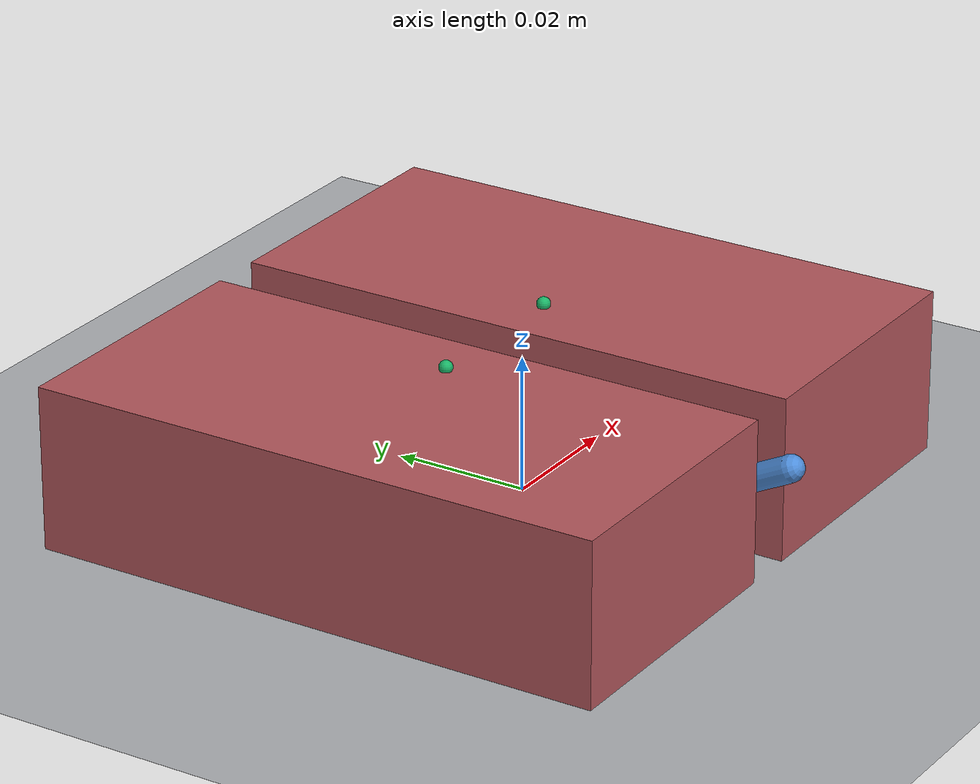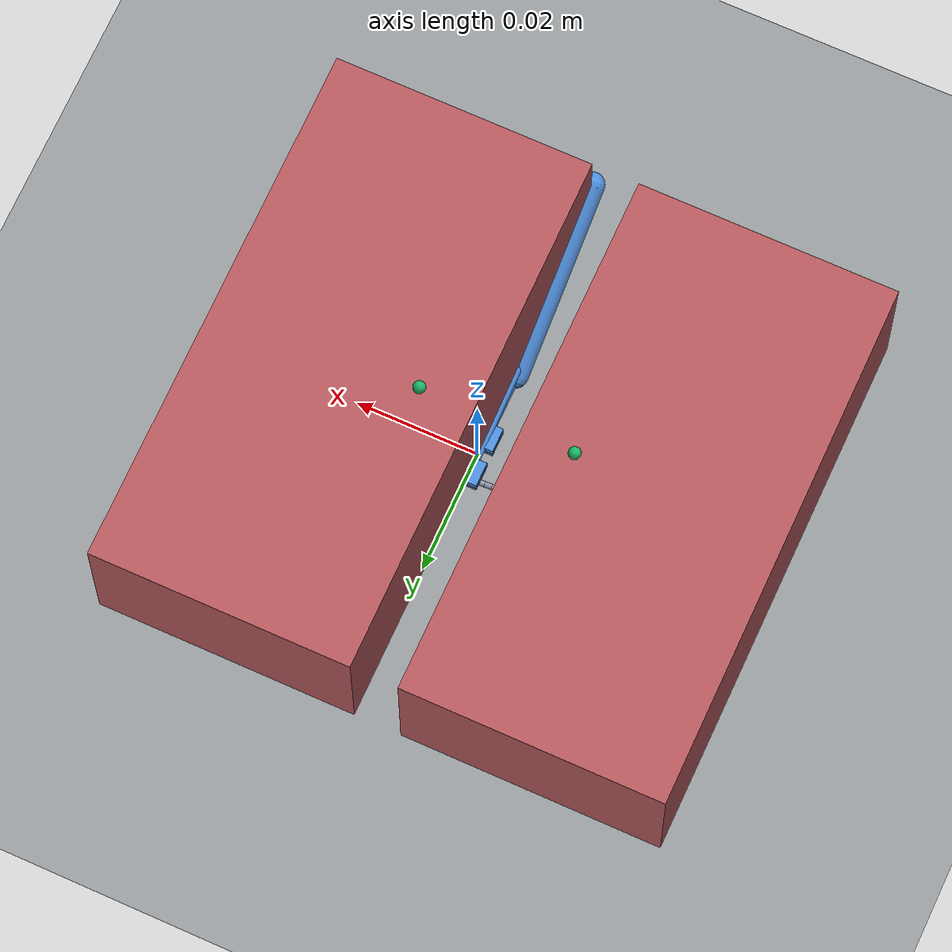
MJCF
<mujoco model="opposing_jaw_stitch"><compiler angle="radian"/><option timestep=".002" integrator="implicitfast"/>
      <default><geom solref=".006 1"/></default><visual><global offwidth="960" offheight="720"/></visual>
      <worldbody><light pos="0 -.15 .3"/><light pos=".1 .1 .3" diffuse=".7 .7 .7"/>
      <camera name="overview" pos=".075 -.12 .14" xyaxes=".85 .53 0 -.37 .60 .71"/>
      <geom name="floor" type="plane" size=".3 .3 .01" rgba=".10 .14 .18 1" contype="1" conaffinity="3"/>
      <body name="left_edge" pos="-0.028772380899656818 0.0018493616940963974 0.012">
          <joint name="left_edge" type="slide" axis="1 0 0" stiffness="71.03026584856343" damping="2" limited="true" range="0 0.003635050733449477"/>
          <geom name="pad_left" type="box" size=".021 .043 0.012" mass=".05" rgba=".70 .34 .36 1" contype="1" conaffinity="1"/>
          <site name="left_stitch" pos="0.012320772821860157 0 0.0125" size=".001" rgba=".1 .7 .4 1"/>
          </body><body name="right_edge" pos="0.020797720567242137 0.0018493616940963974 0.012">
          <joint name="right_edge" type="slide" axis="-1 0 0" stiffness="71.03026584856343" damping="2" limited="true" range="0 0.003635050733449477"/>
          <geom name="pad_right" type="box" size=".021 .043 0.012" mass=".05" rgba=".70 .34 .36 1" contype="1" conaffinity="1"/>
          <site name="right_stitch" pos="-0.012320772821860157 0 0.0125" size=".001" rgba=".1 .7 .4 1"/>
          </body><body name="donor" mocap="true"><geom type="capsule" fromto="0 -.042 .014 0 -.014 0" size=".002" rgba=".30 .55 .85 1" contype="0" conaffinity="0"/>
         <geom type="capsule" fromto="0 -.014 0 0 -.003 0" size=".0008" rgba=".30 .55 .85 1" contype="0" conaffinity="0"/>
         <geom type="capsule" fromto="0 -.014 .002 0 .003 0" size=".0008" rgba=".30 .55 .85 1" contype="0" conaffinity="0"/>
         <geom name="donor_finger_a" type="box" pos="0 -.003 0" size=".002 .002 .001" rgba=".30 .55 .85 1" contype="0" conaffinity="0"/>
         <geom name="donor_finger_b" type="box" pos="0 .003 0" size=".002 .002 .001" rgba=".30 .55 .85 1" contype="0" conaffinity="0"/></body><body name="receiver" mocap="true"><geom type="capsule" fromto="0 -.042 .014 0 -.014 0" size=".002" rgba=".80 .65 .25 1" contype="0" conaffinity="0"/>
         <geom type="capsule" fromto="0 -.014 0 0 -.003 0" size=".0008" rgba=".80 .65 .25 1" contype="0" conaffinity="0"/>
         <geom type="capsule" fromto="0 -.014 .002 0 .003 0" size=".0008" rgba=".80 .65 .25 1" contype="0" conaffinity="0"/>
         <geom name="receiver_finger_a" type="box" pos="0 -.003 0" size=".002 .002 .001" rgba=".80 .65 .25 1" contype="0" conaffinity="0"/>
         <geom name="receiver_finger_b" type="box" pos="0 .003 0" size=".002 .002 .001" rgba=".80 .65 .25 1" contype="0" conaffinity="0"/></body>
      <body name="driver" gravcomp="1"><inertial pos="0 0 0" mass=".15" diaginertia=".0001 .0001 .0001"/>
      <joint name="x" type="slide" axis="1 0 0" damping=".05"/><joint name="y" type="slide" axis="0 1 0" damping=".05"/><joint name="z" type="slide" axis="0 0 1" damping=".05"/>
      <joint name="theta" type="hinge" axis="0 -1 0" damping=".025"/><geom name="needle_0" type="capsule" fromto="-0.01246427791158932 0 -1.5264338048110918e-18 -0.012404259006611318 0 -0.0012217128771668958" size=".00045" rgba=".8 .83 .9 1" contype="2" conaffinity="0"/><geom name="needle_1" type="capsule" fromto="-0.012404259006611318 0 -0.0012217128771668958 -0.012224780306541923 0 -0.0024316599914704796" size=".00045" rgba=".8 .83 .9 1" contype="2" conaffinity="0"/><geom name="needle_2" type="capsule" fromto="-0.012224780306541923 0 -0.0024316599914704796 -0.01192757028937584 0 -0.0036181888907756304" size=".00045" rgba=".8 .83 .9 1" contype="2" conaffinity="0"/><geom name="needle_3" type="capsule" fromto="-0.01192757028937584 0 -0.0036181888907756304 -0.011515491250049898 0 -0.004769872653159376" size=".00045" rgba=".8 .83 .9 1" contype="2" conaffinity="0"/><geom name="needle_4" type="capsule" fromto="-0.011515491250049898 0 -0.004769872653159376 -0.010992511734978127 0 -0.005875619934415569" size=".00045" rgba=".8 .83 .9 1" contype="2" conaffinity="0"/><geom name="needle_5" type="capsule" fromto="-0.010992511734978127 0 -0.005875619934415569 -0.010363668322780352 0 -0.006924781783762759" size=".00045" rgba=".8 .83 .9 1" contype="2" conaffinity="0"/><geom name="needle_6" type="capsule" fromto="-0.010363668322780352 0 -0.006924781783762759 -0.00963501711927681 0 -0.007907254199061534" size=".00045" rgba=".8 .83 .9 1" contype="2" conaffinity="0"/><geom name="needle_7" type="capsule" fromto="-0.00963501711927681 0 -0.007907254199061534 -0.008813575433878507 0 -0.008813575433878508" size=".00045" rgba=".8 .83 .9 1" contype="2" conaffinity="0"/><geom name="needle_8" type="capsule" fromto="-0.008813575433878507 0 -0.008813575433878508 -0.007907254199061532 0 -0.009635017119276812" size=".00045" rgba=".8 .83 .9 1" contype="2" conaffinity="0"/><geom name="needle_9" type="capsule" fromto="-0.007907254199061532 0 -0.009635017119276812 -0.006924781783762757 0 -0.010363668322780352" size=".00045" rgba=".8 .83 .9 1" contype="2" conaffinity="0"/><geom name="needle_10" type="capsule" fromto="-0.006924781783762757 0 -0.010363668322780352 -0.005875619934415567 0 -0.010992511734978129" size=".00045" rgba=".8 .83 .9 1" contype="2" conaffinity="0"/><geom name="needle_11" type="capsule" fromto="-0.005875619934415567 0 -0.010992511734978129 -0.0047698726531593735 0 -0.011515491250049898" size=".00045" rgba=".8 .83 .9 1" contype="2" conaffinity="0"/><geom name="needle_12" type="capsule" fromto="-0.0047698726531593735 0 -0.011515491250049898 -0.003618188890775628 0 -0.011927570289375841" size=".00045" rgba=".8 .83 .9 1" contype="2" conaffinity="0"/><geom name="needle_13" type="capsule" fromto="-0.003618188890775628 0 -0.011927570289375841 -0.0024316599914704744 0 -0.012224780306541923" size=".00045" rgba=".8 .83 .9 1" contype="2" conaffinity="0"/><geom name="needle_14" type="capsule" fromto="-0.0024316599914704744 0 -0.012224780306541923 -0.0012217128771668936 0 -0.01240425900661132" size=".00045" rgba=".8 .83 .9 1" contype="2" conaffinity="0"/><geom name="needle_15" type="capsule" fromto="-0.0012217128771668936 0 -0.01240425900661132 7.632169024055459e-19 0 -0.01246427791158932" size=".00045" rgba=".8 .83 .9 1" contype="2" conaffinity="0"/><geom name="needle_16" type="capsule" fromto="7.632169024055459e-19 0 -0.01246427791158932 0.0012217128771668951 0 -0.012404259006611318" size=".00045" rgba=".8 .83 .9 1" contype="2" conaffinity="0"/><geom name="needle_17" type="capsule" fromto="0.0012217128771668951 0 -0.012404259006611318 0.002431659991470476 0 -0.012224780306541923" size=".00045" rgba=".8 .83 .9 1" contype="2" conaffinity="0"/><geom name="needle_18" type="capsule" fromto="0.002431659991470476 0 -0.012224780306541923 0.0036181888907756295 0 -0.011927570289375841" size=".00045" rgba=".8 .83 .9 1" contype="2" conaffinity="0"/><geom name="needle_19" type="capsule" fromto="0.0036181888907756295 0 -0.011927570289375841 0.004769872653159375 0 -0.011515491250049898" size=".00045" rgba=".8 .83 .9 1" contype="2" conaffinity="0"/><geom name="needle_20" type="capsule" fromto="0.004769872653159375 0 -0.011515491250049898 0.005875619934415569 0 -0.010992511734978127" size=".00045" rgba=".8 .83 .9 1" contype="2" conaffinity="0"/><geom name="needle_21" type="capsule" fromto="0.005875619934415569 0 -0.010992511734978127 0.006924781783762758 0 -0.010363668322780352" size=".00045" rgba=".8 .83 .9 1" contype="2" conaffinity="0"/><geom name="needle_22" type="capsule" fromto="0.006924781783762758 0 -0.010363668322780352 0.007907254199061534 0 -0.00963501711927681" size=".00045" rgba=".8 .83 .9 1" contype="2" conaffinity="0"/><geom name="needle_23" type="capsule" fromto="0.007907254199061534 0 -0.00963501711927681 0.008813575433878508 0 -0.008813575433878508" size=".00045" rgba=".8 .83 .9 1" contype="2" conaffinity="0"/><geom name="needle_24" type="capsule" fromto="0.008813575433878508 0 -0.008813575433878508 0.00963501711927681 0 -0.007907254199061532" size=".00045" rgba=".8 .83 .9 1" contype="2" conaffinity="0"/><geom name="needle_25" type="capsule" fromto="0.00963501711927681 0 -0.007907254199061532 0.010363668322780352 0 -0.006924781783762757" size=".00045" rgba=".8 .83 .9 1" contype="2" conaffinity="0"/><geom name="needle_26" type="capsule" fromto="0.010363668322780352 0 -0.006924781783762757 0.010992511734978127 0 -0.005875619934415568" size=".00045" rgba=".8 .83 .9 1" contype="2" conaffinity="0"/><geom name="needle_27" type="capsule" fromto="0.010992511734978127 0 -0.005875619934415568 0.011515491250049898 0 -0.004769872653159374" size=".00045" rgba=".8 .83 .9 1" contype="2" conaffinity="0"/><geom name="needle_28" type="capsule" fromto="0.011515491250049898 0 -0.004769872653159374 0.011927570289375841 0 -0.003618188890775629" size=".00045" rgba=".8 .83 .9 1" contype="2" conaffinity="0"/><geom name="needle_29" type="capsule" fromto="0.011927570289375841 0 -0.003618188890775629 0.012224780306541923 0 -0.002431659991470478" size=".00045" rgba=".8 .83 .9 1" contype="2" conaffinity="0"/><geom name="needle_30" type="capsule" fromto="0.012224780306541923 0 -0.002431659991470478 0.01240425900661132 0 -0.0012217128771668945" size=".00045" rgba=".8 .83 .9 1" contype="2" conaffinity="0"/><geom name="needle_31" type="capsule" fromto="0.01240425900661132 0 -0.0012217128771668945 0.01246427791158932 0 0.0" size=".00045" rgba=".8 .83 .9 1" contype="2" conaffinity="0"/>
      <site name="tip" pos="0.01246427791158932 0 0" size=".0006" rgba="1 .85 .3 1"/><site name="tail" pos="-0.01246427791158932 0 0" size=".0005" rgba=".3 .3 .3 1"/>
      </body></worldbody><tendon><spatial name="stitch" width=".0003" rgba=".12 .16 .22 0"><site site="left_stitch"/><site site="right_stitch"/></spatial></tendon>
      <actuator><position joint="x" kp="800" kv="22"/><position joint="y" kp="800" kv="22"/><position joint="z" kp="800" kv="22"/>
      <position joint="theta" kp="1.5" kv=".025"/><motor tendon="stitch" gear="1" ctrllimited="true" ctrlrange="-.6 0"/></actuator></mujoco>
